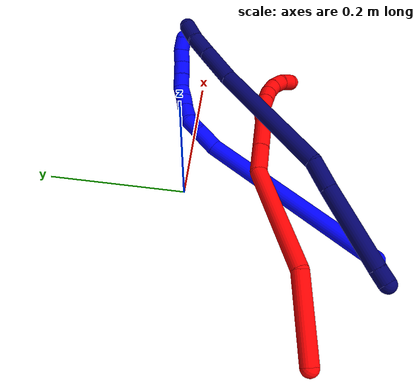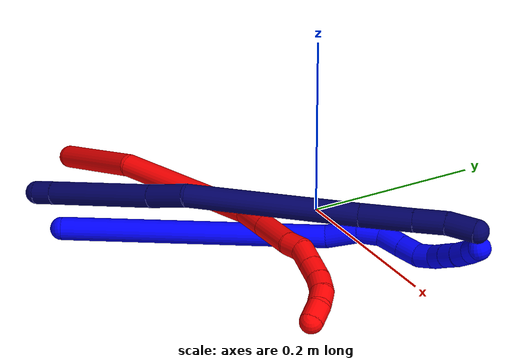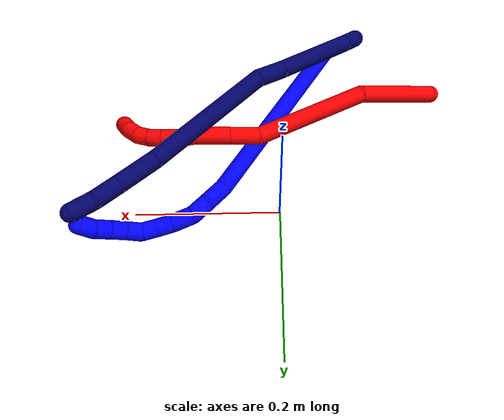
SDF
<sdf version="1.7">
 <world name="default">
  <model name="1">
   <static>0</static>
   <link name="1">
    <collision name="collision-cylinder-e_1_1_4">
     <pose>0.094757 0.101555 0.031999 -1.26556 0.727224 -0.5443</pose>
     <geometry><cylinder><radius>0.0125</radius><length>0.285071</length></cylinder></geometry>
     <surface>
      <friction><ode><mu>1.16</mu><mu2>1.16</mu2><slip1>0</slip1><slip2>0</slip2></ode></friction>
      <contact><ode><kp>1e+06</kp><kd>1</kd><max_vel>0</max_vel><min_depth>0.001</min_depth></ode></contact>
     </surface>
    </collision>
    <visual name="visual-cylinder-e_1_1_4">
     <pose>0.094757 0.101555 0.031999 -1.26556 0.727224 -0.5443</pose>
     <geometry><cylinder><radius>0.0125</radius><length>0.285071</length></cylinder></geometry>
     <material><ambient>0 0 1 1</ambient></material>
    </visual>
    <collision name="collision-cylinder-e_2_4_5">
     <pose>0.200148 0.217335 0.063665 -1.59417 0.641839 -0.655963</pose>
     <geometry><cylinder><radius>0.0125</radius><length>0.035526</length></cylinder></geometry>
     <surface>
      <friction><ode><mu>1.16</mu><mu2>1.16</mu2><slip1>0</slip1><slip2>0</slip2></ode></friction>
      <contact><ode><kp>1e+06</kp><kd>1</kd><max_vel>0</max_vel><min_depth>0.001</min_depth></ode></contact>
     </surface>
    </collision>
    <visual name="visual-cylinder-e_2_4_5">
     <pose>0.200148 0.217335 0.063665 -1.59417 0.641839 -0.655963</pose>
     <geometry><cylinder><radius>0.0125</radius><length>0.035526</length></cylinder></geometry>
     <material><ambient>0 0 1 1</ambient></material>
    </visual>
    <collision name="collision-cylinder-e_3_5_6">
     <pose>0.217127 0.24212 0.066509 -1.27857 0.522029 -0.392053</pose>
     <geometry><cylinder><radius>0.0125</radius><length>0.025446</length></cylinder></geometry>
     <surface>
      <friction><ode><mu>1.16</mu><mu2>1.16</mu2><slip1>0</slip1><slip2>0</slip2></ode></friction>
      <contact><ode><kp>1e+06</kp><kd>1</kd><max_vel>0</max_vel><min_depth>0.001</min_depth></ode></contact>
     </surface>
    </collision>
    <visual name="visual-cylinder-e_3_5_6">
     <pose>0.217127 0.24212 0.066509 -1.27857 0.522029 -0.392053</pose>
     <geometry><cylinder><radius>0.0125</radius><length>0.025446</length></cylinder></geometry>
     <material><ambient>0 0 1 1</ambient></material>
    </visual>
    <collision name="collision-cylinder-e_4_6_7">
     <pose>0.224424 0.265693 0.075253 -1.1666 0.067213 -0.044363</pose>
     <geometry><cylinder><radius>0.0125</radius><length>0.02837</length></cylinder></geometry>
     <surface>
      <friction><ode><mu>1.16</mu><mu2>1.16</mu2><slip1>0</slip1><slip2>0</slip2></ode></friction>
      <contact><ode><kp>1e+06</kp><kd>1</kd><max_vel>0</max_vel><min_depth>0.001</min_depth></ode></contact>
     </surface>
    </collision>
    <visual name="visual-cylinder-e_4_6_7">
     <pose>0.224424 0.265693 0.075253 -1.1666 0.067213 -0.044363</pose>
     <geometry><cylinder><radius>0.0125</radius><length>0.02837</length></cylinder></geometry>
     <material><ambient>0 0 1 1</ambient></material>
    </visual>
    <collision name="collision-cylinder-e_5_7_8">
     <pose>0.225427 0.290047 0.084431 -1.26249 0.004249 -0.003106</pose>
     <geometry><cylinder><radius>0.0125</radius><length>0.023807</length></cylinder></geometry>
     <surface>
      <friction><ode><mu>1.16</mu><mu2>1.16</mu2><slip1>0</slip1><slip2>0</slip2></ode></friction>
      <contact><ode><kp>1e+06</kp><kd>1</kd><max_vel>0</max_vel><min_depth>0.001</min_depth></ode></contact>
     </surface>
    </collision>
    <visual name="visual-cylinder-e_5_7_8">
     <pose>0.225427 0.290047 0.084431 -1.26249 0.004249 -0.003106</pose>
     <geometry><cylinder><radius>0.0125</radius><length>0.023807</length></cylinder></geometry>
     <material><ambient>0 0 1 1</ambient></material>
    </visual>
    <collision name="collision-cylinder-e_6_8_9">
     <pose>0.226951 0.311512 0.087967 -1.57832 0.14455 -0.145638</pose>
     <geometry><cylinder><radius>0.0125</radius><length>0.020458</length></cylinder></geometry>
     <surface>
      <friction><ode><mu>1.16</mu><mu2>1.16</mu2><slip1>0</slip1><slip2>0</slip2></ode></friction>
      <contact><ode><kp>1e+06</kp><kd>1</kd><max_vel>0</max_vel><min_depth>0.001</min_depth></ode></contact>
     </surface>
    </collision>
    <visual name="visual-cylinder-e_6_8_9">
     <pose>0.226951 0.311512 0.087967 -1.57832 0.14455 -0.145638</pose>
     <geometry><cylinder><radius>0.0125</radius><length>0.020458</length></cylinder></geometry>
     <material><ambient>0 0 1 1</ambient></material>
    </visual>
    <collision name="collision-cylinder-e_7_9_10">
     <pose>0.227167 0.331533 0.0852 -1.83621 -0.121956 0.159392</pose>
     <geometry><cylinder><radius>0.0125</radius><length>0.02067</length></cylinder></geometry>
     <surface>
      <friction><ode><mu>1.16</mu><mu2>1.16</mu2><slip1>0</slip1><slip2>0</slip2></ode></friction>
      <contact><ode><kp>1e+06</kp><kd>1</kd><max_vel>0</max_vel><min_depth>0.001</min_depth></ode></contact>
     </surface>
    </collision>
    <visual name="visual-cylinder-e_7_9_10">
     <pose>0.227167 0.331533 0.0852 -1.83621 -0.121956 0.159392</pose>
     <geometry><cylinder><radius>0.0125</radius><length>0.02067</length></cylinder></geometry>
     <material><ambient>0 0 1 1</ambient></material>
    </visual>
    <collision name="collision-cylinder-e_8_10_11">
     <pose>0.224991 0.351176 0.080162 -1.80718 -0.091384 0.115961</pose>
     <geometry><cylinder><radius>0.0125</radius><length>0.02013</length></cylinder></geometry>
     <surface>
      <friction><ode><mu>1.16</mu><mu2>1.16</mu2><slip1>0</slip1><slip2>0</slip2></ode></friction>
      <contact><ode><kp>1e+06</kp><kd>1</kd><max_vel>0</max_vel><min_depth>0.001</min_depth></ode></contact>
     </surface>
    </collision>
    <visual name="visual-cylinder-e_8_10_11">
     <pose>0.224991 0.351176 0.080162 -1.80718 -0.091384 0.115961</pose>
     <geometry><cylinder><radius>0.0125</radius><length>0.02013</length></cylinder></geometry>
     <material><ambient>0 0 1 1</ambient></material>
    </visual>
    <collision name="collision-cylinder-e_9_11_12">
     <pose>0.223972 0.370537 0.074639 -1.8897 -0.009973 0.013795</pose>
     <geometry><cylinder><radius>0.0125</radius><length>0.020253</length></cylinder></geometry>
     <surface>
      <friction><ode><mu>1.16</mu><mu2>1.16</mu2><slip1>0</slip1><slip2>0</slip2></ode></friction>
      <contact><ode><kp>1e+06</kp><kd>1</kd><max_vel>0</max_vel><min_depth>0.001</min_depth></ode></contact>
     </surface>
    </collision>
    <visual name="visual-cylinder-e_9_11_12">
     <pose>0.223972 0.370537 0.074639 -1.8897 -0.009973 0.013795</pose>
     <geometry><cylinder><radius>0.0125</radius><length>0.020253</length></cylinder></geometry>
     <material><ambient>0 0 1 1</ambient></material>
    </visual>
    <collision name="collision-cylinder-e_10_12_2">
     <pose>0.22141 0.389041 0.067265 -2.01215 -0.245281 0.38431</pose>
     <geometry><cylinder><radius>0.0125</radius><length>0.020269</length></cylinder></geometry>
     <surface>
      <friction><ode><mu>1.16</mu><mu2>1.16</mu2><slip1>0</slip1><slip2>0</slip2></ode></friction>
      <contact><ode><kp>1e+06</kp><kd>1</kd><max_vel>0</max_vel><min_depth>0.001</min_depth></ode></contact>
     </surface>
    </collision>
    <visual name="visual-cylinder-e_10_12_2">
     <pose>0.22141 0.389041 0.067265 -2.01215 -0.245281 0.38431</pose>
     <geometry><cylinder><radius>0.0125</radius><length>0.020269</length></cylinder></geometry>
     <material><ambient>0 0 1 1</ambient></material>
    </visual>
    <collision name="collision-sphere-2">
     <pose>0.218949 0.39793 0.063066 0 -0 0</pose>
     <geometry><sphere><radius>0.0125</radius></sphere></geometry>
     <surface>
      <friction><ode><mu>1.16</mu><mu2>1.16</mu2><slip1>0</slip1><slip2>0</slip2></ode></friction>
      <contact><ode><kp>1e+06</kp><kd>1</kd><max_vel>0</max_vel><min_depth>0.001</min_depth></ode></contact>
     </surface>
    </collision>
    <visual name="visual-sphere-2">
     <pose>0.218949 0.39793 0.063066 0 -0 0</pose>
     <geometry><sphere><radius>0.0125</radius></sphere></geometry>
     <material><ambient>0 0 1 1</ambient></material>
    </visual>
    <collision name="collision-sphere-12">
     <pose>0.223871 0.380152 0.071465 0 -0 0</pose>
     <geometry><sphere><radius>0.0125</radius></sphere></geometry>
     <surface>
      <friction><ode><mu>1.16</mu><mu2>1.16</mu2><slip1>0</slip1><slip2>0</slip2></ode></friction>
      <contact><ode><kp>1e+06</kp><kd>1</kd><max_vel>0</max_vel><min_depth>0.001</min_depth></ode></contact>
     </surface>
    </collision>
    <visual name="visual-sphere-12">
     <pose>0.223871 0.380152 0.071465 0 -0 0</pose>
     <geometry><sphere><radius>0.0125</radius></sphere></geometry>
     <material><ambient>0 0 1 1</ambient></material>
    </visual>
    <collision name="collision-sphere-11">
     <pose>0.224073 0.360921 0.077814 0 -0 0</pose>
     <geometry><sphere><radius>0.0125</radius></sphere></geometry>
     <surface>
      <friction><ode><mu>1.16</mu><mu2>1.16</mu2><slip1>0</slip1><slip2>0</slip2></ode></friction>
      <contact><ode><kp>1e+06</kp><kd>1</kd><max_vel>0</max_vel><min_depth>0.001</min_depth></ode></contact>
     </surface>
    </collision>
    <visual name="visual-sphere-11">
     <pose>0.224073 0.360921 0.077814 0 -0 0</pose>
     <geometry><sphere><radius>0.0125</radius></sphere></geometry>
     <material><ambient>0 0 1 1</ambient></material>
    </visual>
    <collision name="collision-sphere-10">
     <pose>0.22591 0.341432 0.082509 0 -0 0</pose>
     <geometry><sphere><radius>0.0125</radius></sphere></geometry>
     <surface>
      <friction><ode><mu>1.16</mu><mu2>1.16</mu2><slip1>0</slip1><slip2>0</slip2></ode></friction>
      <contact><ode><kp>1e+06</kp><kd>1</kd><max_vel>0</max_vel><min_depth>0.001</min_depth></ode></contact>
     </surface>
    </collision>
    <visual name="visual-sphere-10">
     <pose>0.22591 0.341432 0.082509 0 -0 0</pose>
     <geometry><sphere><radius>0.0125</radius></sphere></geometry>
     <material><ambient>0 0 1 1</ambient></material>
    </visual>
    <collision name="collision-sphere-9">
     <pose>0.228424 0.321633 0.087891 0 -0 0</pose>
     <geometry><sphere><radius>0.0125</radius></sphere></geometry>
     <surface>
      <friction><ode><mu>1.16</mu><mu2>1.16</mu2><slip1>0</slip1><slip2>0</slip2></ode></friction>
      <contact><ode><kp>1e+06</kp><kd>1</kd><max_vel>0</max_vel><min_depth>0.001</min_depth></ode></contact>
     </surface>
    </collision>
    <visual name="visual-sphere-9">
     <pose>0.228424 0.321633 0.087891 0 -0 0</pose>
     <geometry><sphere><radius>0.0125</radius></sphere></geometry>
     <material><ambient>0 0 1 1</ambient></material>
    </visual>
    <collision name="collision-sphere-4">
     <pose>0.189514 0.20311 0.063997 0 -0 0</pose>
     <geometry><sphere><radius>0.0125</radius></sphere></geometry>
     <surface>
      <friction><ode><mu>1.16</mu><mu2>1.16</mu2><slip1>0</slip1><slip2>0</slip2></ode></friction>
      <contact><ode><kp>1e+06</kp><kd>1</kd><max_vel>0</max_vel><min_depth>0.001</min_depth></ode></contact>
     </surface>
    </collision>
    <visual name="visual-sphere-4">
     <pose>0.189514 0.20311 0.063997 0 -0 0</pose>
     <geometry><sphere><radius>0.0125</radius></sphere></geometry>
     <material><ambient>0 0 1 1</ambient></material>
    </visual>
    <collision name="collision-sphere-1">
     <geometry><sphere><radius>0.0125</radius></sphere></geometry>
     <surface>
      <friction><ode><mu>1.16</mu><mu2>1.16</mu2><slip1>0</slip1><slip2>0</slip2></ode></friction>
      <contact><ode><kp>1e+06</kp><kd>1</kd><max_vel>0</max_vel><min_depth>0.001</min_depth></ode></contact>
     </surface>
    </collision>
    <visual name="visual-sphere-1">
     <geometry><sphere><radius>0.0125</radius></sphere></geometry>
     <material><ambient>0 0 1 1</ambient></material>
    </visual>
    <collision name="collision-sphere-8">
     <pose>0.225477 0.30139 0.088043 0 -0 0</pose>
     <geometry><sphere><radius>0.0125</radius></sphere></geometry>
     <surface>
      <friction><ode><mu>1.16</mu><mu2>1.16</mu2><slip1>0</slip1><slip2>0</slip2></ode></friction>
      <contact><ode><kp>1e+06</kp><kd>1</kd><max_vel>0</max_vel><min_depth>0.001</min_depth></ode></contact>
     </surface>
    </collision>
    <visual name="visual-sphere-8">
     <pose>0.225477 0.30139 0.088043 0 -0 0</pose>
     <geometry><sphere><radius>0.0125</radius></sphere></geometry>
     <material><ambient>0 0 1 1</ambient></material>
    </visual>
    <collision name="collision-sphere-5">
     <pose>0.210783 0.231559 0.063332 0 -0 0</pose>
     <geometry><sphere><radius>0.0125</radius></sphere></geometry>
     <surface>
      <friction><ode><mu>1.16</mu><mu2>1.16</mu2><slip1>0</slip1><slip2>0</slip2></ode></friction>
      <contact><ode><kp>1e+06</kp><kd>1</kd><max_vel>0</max_vel><min_depth>0.001</min_depth></ode></contact>
     </surface>
    </collision>
    <visual name="visual-sphere-5">
     <pose>0.210783 0.231559 0.063332 0 -0 0</pose>
     <geometry><sphere><radius>0.0125</radius></sphere></geometry>
     <material><ambient>0 0 1 1</ambient></material>
    </visual>
    <collision name="collision-sphere-6">
     <pose>0.223471 0.25268 0.069687 0 -0 0</pose>
     <geometry><sphere><radius>0.0125</radius></sphere></geometry>
     <surface>
      <friction><ode><mu>1.16</mu><mu2>1.16</mu2><slip1>0</slip1><slip2>0</slip2></ode></friction>
      <contact><ode><kp>1e+06</kp><kd>1</kd><max_vel>0</max_vel><min_depth>0.001</min_depth></ode></contact>
     </surface>
    </collision>
    <visual name="visual-sphere-6">
     <pose>0.223471 0.25268 0.069687 0 -0 0</pose>
     <geometry><sphere><radius>0.0125</radius></sphere></geometry>
     <material><ambient>0 0 1 1</ambient></material>
    </visual>
    <collision name="collision-sphere-7">
     <pose>0.225376 0.278705 0.080819 0 -0 0</pose>
     <geometry><sphere><radius>0.0125</radius></sphere></geometry>
     <surface>
      <friction><ode><mu>1.16</mu><mu2>1.16</mu2><slip1>0</slip1><slip2>0</slip2></ode></friction>
      <contact><ode><kp>1e+06</kp><kd>1</kd><max_vel>0</max_vel><min_depth>0.001</min_depth></ode></contact>
     </surface>
    </collision>
    <visual name="visual-sphere-7">
     <pose>0.225376 0.278705 0.080819 0 -0 0</pose>
     <geometry><sphere><radius>0.0125</radius></sphere></geometry>
     <material><ambient>0 0 1 1</ambient></material>
    </visual>
    <inertial>
     <pose>0.148546 0.185921 0.050541 0 -0 0</pose>
     <mass>0.5</mass>
     <inertia>
      <ixx>0.000522</ixx>
      <ixy>0</ixy>
      <ixz>0</ixz>
      <iyy>0.000417</iyy>
      <iyz>0</iyz>
      <izz>-0.002691</izz>
     </inertia>
    </inertial>
   </link>
   <pose>-0.078273 -0.272883 0.011501 2.9055 -0.077396 1.82902</pose>
  </model>
  <model name="2">
   <static>0</static>
   <link name="2">
    <collision name="collision-cylinder-e_1_1_4">
     <pose>0.045639 0.012044 0.035538 -0.326761 0.882673 -0.155441</pose>
     <geometry><cylinder><radius>0.0125</radius><length>0.118168</length></cylinder></geometry>
     <surface>
      <friction><ode><mu>1.16</mu><mu2>1.16</mu2><slip1>0</slip1><slip2>0</slip2></ode></friction>
      <contact><ode><kp>1e+06</kp><kd>1</kd><max_vel>0</max_vel><min_depth>0.001</min_depth></ode></contact>
     </surface>
    </collision>
    <visual name="visual-cylinder-e_1_1_4">
     <pose>0.045639 0.012044 0.035538 -0.326761 0.882673 -0.155441</pose>
     <geometry><cylinder><radius>0.0125</radius><length>0.118168</length></cylinder></geometry>
     <material><ambient>1 0 0 1</ambient></material>
    </visual>
    <collision name="collision-cylinder-e_2_4_5">
     <pose>0.166402 0.046902 0.091939 -0.83001 1.1804 -0.573969</pose>
     <geometry><cylinder><radius>0.0125</radius><length>0.162474</length></cylinder></geometry>
     <surface>
      <friction><ode><mu>1.16</mu><mu2>1.16</mu2><slip1>0</slip1><slip2>0</slip2></ode></friction>
      <contact><ode><kp>1e+06</kp><kd>1</kd><max_vel>0</max_vel><min_depth>0.001</min_depth></ode></contact>
     </surface>
    </collision>
    <visual name="visual-cylinder-e_2_4_5">
     <pose>0.166402 0.046902 0.091939 -0.83001 1.1804 -0.573969</pose>
     <geometry><cylinder><radius>0.0125</radius><length>0.162474</length></cylinder></geometry>
     <material><ambient>1 0 0 1</ambient></material>
    </visual>
    <collision name="collision-cylinder-e_3_5_6">
     <pose>0.259366 0.068783 0.123188 0.089501 1.04187 0.051379</pose>
     <geometry><cylinder><radius>0.0125</radius><length>0.041325</length></cylinder></geometry>
     <surface>
      <friction><ode><mu>1.16</mu><mu2>1.16</mu2><slip1>0</slip1><slip2>0</slip2></ode></friction>
      <contact><ode><kp>1e+06</kp><kd>1</kd><max_vel>0</max_vel><min_depth>0.001</min_depth></ode></contact>
     </surface>
    </collision>
    <visual name="visual-cylinder-e_3_5_6">
     <pose>0.259366 0.068783 0.123188 0.089501 1.04187 0.051379</pose>
     <geometry><cylinder><radius>0.0125</radius><length>0.041325</length></cylinder></geometry>
     <material><ambient>1 0 0 1</ambient></material>
    </visual>
    <collision name="collision-cylinder-e_4_6_7">
     <pose>0.298591 0.066723 0.145993 0.090544 1.04284 0.052036</pose>
     <geometry><cylinder><radius>0.0125</radius><length>0.049515</length></cylinder></geometry>
     <surface>
      <friction><ode><mu>1.16</mu><mu2>1.16</mu2><slip1>0</slip1><slip2>0</slip2></ode></friction>
      <contact><ode><kp>1e+06</kp><kd>1</kd><max_vel>0</max_vel><min_depth>0.001</min_depth></ode></contact>
     </surface>
    </collision>
    <visual name="visual-cylinder-e_4_6_7">
     <pose>0.298591 0.066723 0.145993 0.090544 1.04284 0.052036</pose>
     <geometry><cylinder><radius>0.0125</radius><length>0.049515</length></cylinder></geometry>
     <material><ambient>1 0 0 1</ambient></material>
    </visual>
    <collision name="collision-cylinder-e_5_7_8">
     <pose>0.329169 0.067107 0.162792 -0.332367 1.1041 -0.205888</pose>
     <geometry><cylinder><radius>0.0125</radius><length>0.020585</length></cylinder></geometry>
     <surface>
      <friction><ode><mu>1.16</mu><mu2>1.16</mu2><slip1>0</slip1><slip2>0</slip2></ode></friction>
      <contact><ode><kp>1e+06</kp><kd>1</kd><max_vel>0</max_vel><min_depth>0.001</min_depth></ode></contact>
     </surface>
    </collision>
    <visual name="visual-cylinder-e_5_7_8">
     <pose>0.329169 0.067107 0.162792 -0.332367 1.1041 -0.205888</pose>
     <geometry><cylinder><radius>0.0125</radius><length>0.020585</length></cylinder></geometry>
     <material><ambient>1 0 0 1</ambient></material>
    </visual>
    <collision name="collision-cylinder-e_6_8_9">
     <pose>0.35004 0.064746 0.17139 0.742254 1.11488 0.476001</pose>
     <geometry><cylinder><radius>0.0125</radius><length>0.026016</length></cylinder></geometry>
     <surface>
      <friction><ode><mu>1.16</mu><mu2>1.16</mu2><slip1>0</slip1><slip2>0</slip2></ode></friction>
      <contact><ode><kp>1e+06</kp><kd>1</kd><max_vel>0</max_vel><min_depth>0.001</min_depth></ode></contact>
     </surface>
    </collision>
    <visual name="visual-cylinder-e_6_8_9">
     <pose>0.35004 0.064746 0.17139 0.742254 1.11488 0.476001</pose>
     <geometry><cylinder><radius>0.0125</radius><length>0.026016</length></cylinder></geometry>
     <material><ambient>1 0 0 1</ambient></material>
    </visual>
    <collision name="collision-cylinder-e_7_9_10">
     <pose>0.371309 0.057676 0.179066 0.746841 1.11437 0.47885</pose>
     <geometry><cylinder><radius>0.0125</radius><length>0.021366</length></cylinder></geometry>
     <surface>
      <friction><ode><mu>1.16</mu><mu2>1.16</mu2><slip1>0</slip1><slip2>0</slip2></ode></friction>
      <contact><ode><kp>1e+06</kp><kd>1</kd><max_vel>0</max_vel><min_depth>0.001</min_depth></ode></contact>
     </surface>
    </collision>
    <visual name="visual-cylinder-e_7_9_10">
     <pose>0.371309 0.057676 0.179066 0.746841 1.11437 0.47885</pose>
     <geometry><cylinder><radius>0.0125</radius><length>0.021366</length></cylinder></geometry>
     <material><ambient>1 0 0 1</ambient></material>
    </visual>
    <collision name="collision-cylinder-e_8_10_11">
     <pose>0.389068 0.049834 0.186375 0.878009 0.934574 0.465266</pose>
     <geometry><cylinder><radius>0.0125</radius><length>0.020314</length></cylinder></geometry>
     <surface>
      <friction><ode><mu>1.16</mu><mu2>1.16</mu2><slip1>0</slip1><slip2>0</slip2></ode></friction>
      <contact><ode><kp>1e+06</kp><kd>1</kd><max_vel>0</max_vel><min_depth>0.001</min_depth></ode></contact>
     </surface>
    </collision>
    <visual name="visual-cylinder-e_8_10_11">
     <pose>0.389068 0.049834 0.186375 0.878009 0.934574 0.465266</pose>
     <geometry><cylinder><radius>0.0125</radius><length>0.020314</length></cylinder></geometry>
     <material><ambient>1 0 0 1</ambient></material>
    </visual>
    <collision name="collision-cylinder-e_9_11_12">
     <pose>0.40321 0.037993 0.193858 1.10389 0.637624 0.401044</pose>
     <geometry><cylinder><radius>0.0125</radius><length>0.020063</length></cylinder></geometry>
     <surface>
      <friction><ode><mu>1.16</mu><mu2>1.16</mu2><slip1>0</slip1><slip2>0</slip2></ode></friction>
      <contact><ode><kp>1e+06</kp><kd>1</kd><max_vel>0</max_vel><min_depth>0.001</min_depth></ode></contact>
     </surface>
    </collision>
    <visual name="visual-cylinder-e_9_11_12">
     <pose>0.40321 0.037993 0.193858 1.10389 0.637624 0.401044</pose>
     <geometry><cylinder><radius>0.0125</radius><length>0.020063</length></cylinder></geometry>
     <material><ambient>1 0 0 1</ambient></material>
    </visual>
    <collision name="collision-cylinder-e_10_12_2">
     <pose>0.413736 0.021863 0.198594 1.44745 0.468472 0.415632</pose>
     <geometry><cylinder><radius>0.0125</radius><length>0.020174</length></cylinder></geometry>
     <surface>
      <friction><ode><mu>1.16</mu><mu2>1.16</mu2><slip1>0</slip1><slip2>0</slip2></ode></friction>
      <contact><ode><kp>1e+06</kp><kd>1</kd><max_vel>0</max_vel><min_depth>0.001</min_depth></ode></contact>
     </surface>
    </collision>
    <visual name="visual-cylinder-e_10_12_2">
     <pose>0.413736 0.021863 0.198594 1.44745 0.468472 0.415632</pose>
     <geometry><cylinder><radius>0.0125</radius><length>0.020174</length></cylinder></geometry>
     <material><ambient>1 0 0 1</ambient></material>
    </visual>
    <collision name="collision-sphere-2">
     <pose>0.418291 0.012931 0.199701 0 -0 0</pose>
     <geometry><sphere><radius>0.0125</radius></sphere></geometry>
     <surface>
      <friction><ode><mu>1.16</mu><mu2>1.16</mu2><slip1>0</slip1><slip2>0</slip2></ode></friction>
      <contact><ode><kp>1e+06</kp><kd>1</kd><max_vel>0</max_vel><min_depth>0.001</min_depth></ode></contact>
     </surface>
    </collision>
    <visual name="visual-sphere-2">
     <pose>0.418291 0.012931 0.199701 0 -0 0</pose>
     <geometry><sphere><radius>0.0125</radius></sphere></geometry>
     <material><ambient>1 0 0 1</ambient></material>
    </visual>
    <collision name="collision-sphere-12">
     <pose>0.409182 0.030795 0.197486 0 -0 0</pose>
     <geometry><sphere><radius>0.0125</radius></sphere></geometry>
     <surface>
      <friction><ode><mu>1.16</mu><mu2>1.16</mu2><slip1>0</slip1><slip2>0</slip2></ode></friction>
      <contact><ode><kp>1e+06</kp><kd>1</kd><max_vel>0</max_vel><min_depth>0.001</min_depth></ode></contact>
     </surface>
    </collision>
    <visual name="visual-sphere-12">
     <pose>0.409182 0.030795 0.197486 0 -0 0</pose>
     <geometry><sphere><radius>0.0125</radius></sphere></geometry>
     <material><ambient>1 0 0 1</ambient></material>
    </visual>
    <collision name="collision-sphere-11">
     <pose>0.397238 0.04519 0.19023 0 -0 0</pose>
     <geometry><sphere><radius>0.0125</radius></sphere></geometry>
     <surface>
      <friction><ode><mu>1.16</mu><mu2>1.16</mu2><slip1>0</slip1><slip2>0</slip2></ode></friction>
      <contact><ode><kp>1e+06</kp><kd>1</kd><max_vel>0</max_vel><min_depth>0.001</min_depth></ode></contact>
     </surface>
    </collision>
    <visual name="visual-sphere-11">
     <pose>0.397238 0.04519 0.19023 0 -0 0</pose>
     <geometry><sphere><radius>0.0125</radius></sphere></geometry>
     <material><ambient>1 0 0 1</ambient></material>
    </visual>
    <collision name="collision-sphere-10">
     <pose>0.380899 0.054478 0.182521 0 -0 0</pose>
     <geometry><sphere><radius>0.0125</radius></sphere></geometry>
     <surface>
      <friction><ode><mu>1.16</mu><mu2>1.16</mu2><slip1>0</slip1><slip2>0</slip2></ode></friction>
      <contact><ode><kp>1e+06</kp><kd>1</kd><max_vel>0</max_vel><min_depth>0.001</min_depth></ode></contact>
     </surface>
    </collision>
    <visual name="visual-sphere-10">
     <pose>0.380899 0.054478 0.182521 0 -0 0</pose>
     <geometry><sphere><radius>0.0125</radius></sphere></geometry>
     <material><ambient>1 0 0 1</ambient></material>
    </visual>
    <collision name="collision-sphere-9">
     <pose>0.361719 0.060875 0.17561 0 -0 0</pose>
     <geometry><sphere><radius>0.0125</radius></sphere></geometry>
     <surface>
      <friction><ode><mu>1.16</mu><mu2>1.16</mu2><slip1>0</slip1><slip2>0</slip2></ode></friction>
      <contact><ode><kp>1e+06</kp><kd>1</kd><max_vel>0</max_vel><min_depth>0.001</min_depth></ode></contact>
     </surface>
    </collision>
    <visual name="visual-sphere-9">
     <pose>0.361719 0.060875 0.17561 0 -0 0</pose>
     <geometry><sphere><radius>0.0125</radius></sphere></geometry>
     <material><ambient>1 0 0 1</ambient></material>
    </visual>
    <collision name="collision-sphere-4">
     <pose>0.091277 0.024088 0.071076 0 -0 0</pose>
     <geometry><sphere><radius>0.0125</radius></sphere></geometry>
     <surface>
      <friction><ode><mu>1.16</mu><mu2>1.16</mu2><slip1>0</slip1><slip2>0</slip2></ode></friction>
      <contact><ode><kp>1e+06</kp><kd>1</kd><max_vel>0</max_vel><min_depth>0.001</min_depth></ode></contact>
     </surface>
    </collision>
    <visual name="visual-sphere-4">
     <pose>0.091277 0.024088 0.071076 0 -0 0</pose>
     <geometry><sphere><radius>0.0125</radius></sphere></geometry>
     <material><ambient>1 0 0 1</ambient></material>
    </visual>
    <collision name="collision-sphere-1">
     <geometry><sphere><radius>0.0125</radius></sphere></geometry>
     <surface>
      <friction><ode><mu>1.16</mu><mu2>1.16</mu2><slip1>0</slip1><slip2>0</slip2></ode></friction>
      <contact><ode><kp>1e+06</kp><kd>1</kd><max_vel>0</max_vel><min_depth>0.001</min_depth></ode></contact>
     </surface>
    </collision>
    <visual name="visual-sphere-1">
     <geometry><sphere><radius>0.0125</radius></sphere></geometry>
     <material><ambient>1 0 0 1</ambient></material>
    </visual>
    <collision name="collision-sphere-8">
     <pose>0.338361 0.068618 0.167169 0 -0 0</pose>
     <geometry><sphere><radius>0.0125</radius></sphere></geometry>
     <surface>
      <friction><ode><mu>1.16</mu><mu2>1.16</mu2><slip1>0</slip1><slip2>0</slip2></ode></friction>
      <contact><ode><kp>1e+06</kp><kd>1</kd><max_vel>0</max_vel><min_depth>0.001</min_depth></ode></contact>
     </surface>
    </collision>
    <visual name="visual-sphere-8">
     <pose>0.338361 0.068618 0.167169 0 -0 0</pose>
     <geometry><sphere><radius>0.0125</radius></sphere></geometry>
     <material><ambient>1 0 0 1</ambient></material>
    </visual>
    <collision name="collision-sphere-5">
     <pose>0.241527 0.069715 0.112803 0 -0 0</pose>
     <geometry><sphere><radius>0.0125</radius></sphere></geometry>
     <surface>
      <friction><ode><mu>1.16</mu><mu2>1.16</mu2><slip1>0</slip1><slip2>0</slip2></ode></friction>
      <contact><ode><kp>1e+06</kp><kd>1</kd><max_vel>0</max_vel><min_depth>0.001</min_depth></ode></contact>
     </surface>
    </collision>
    <visual name="visual-sphere-5">
     <pose>0.241527 0.069715 0.112803 0 -0 0</pose>
     <geometry><sphere><radius>0.0125</radius></sphere></geometry>
     <material><ambient>1 0 0 1</ambient></material>
    </visual>
    <collision name="collision-sphere-6">
     <pose>0.277205 0.067851 0.133572 0 -0 0</pose>
     <geometry><sphere><radius>0.0125</radius></sphere></geometry>
     <surface>
      <friction><ode><mu>1.16</mu><mu2>1.16</mu2><slip1>0</slip1><slip2>0</slip2></ode></friction>
      <contact><ode><kp>1e+06</kp><kd>1</kd><max_vel>0</max_vel><min_depth>0.001</min_depth></ode></contact>
     </surface>
    </collision>
    <visual name="visual-sphere-6">
     <pose>0.277205 0.067851 0.133572 0 -0 0</pose>
     <geometry><sphere><radius>0.0125</radius></sphere></geometry>
     <material><ambient>1 0 0 1</ambient></material>
    </visual>
    <collision name="collision-sphere-7">
     <pose>0.319978 0.065596 0.158414 0 -0 0</pose>
     <geometry><sphere><radius>0.0125</radius></sphere></geometry>
     <surface>
      <friction><ode><mu>1.16</mu><mu2>1.16</mu2><slip1>0</slip1><slip2>0</slip2></ode></friction>
      <contact><ode><kp>1e+06</kp><kd>1</kd><max_vel>0</max_vel><min_depth>0.001</min_depth></ode></contact>
     </surface>
    </collision>
    <visual name="visual-sphere-7">
     <pose>0.319978 0.065596 0.158414 0 -0 0</pose>
     <geometry><sphere><radius>0.0125</radius></sphere></geometry>
     <material><ambient>1 0 0 1</ambient></material>
    </visual>
    <inertial>
     <pose>0.212176 0.043407 0.109549 0 -0 0</pose>
     <mass>0.5</mass>
     <inertia>
      <ixx>0.000167</ixx>
      <ixy>0</ixy>
      <ixz>0</ixz>
      <iyy>0.000421</iyy>
      <iyz>0</iyz>
      <izz>-0.000581</izz>
     </inertia>
    </inertial>
   </link>
   <pose>-0.234428 -0.189665 0.011562 0.457412 0.414147 0.269794</pose>
  </model>
  <model name="7">
   <static>0</static>
   <link name="7">
    <collision name="collision-cylinder-e_1_1_4">
     <pose>0.007314 0.008258 0.001094 -1.43913 0.720529 -0.637686</pose>
     <geometry><cylinder><radius>0.0125</radius><length>0.022171</length></cylinder></geometry>
     <surface>
      <friction><ode><mu>1.16</mu><mu2>1.16</mu2><slip1>0</slip1><slip2>0</slip2></ode></friction>
      <contact><ode><kp>1e+06</kp><kd>1</kd><max_vel>0</max_vel><min_depth>0.001</min_depth></ode></contact>
     </surface>
    </collision>
    <visual name="visual-cylinder-e_1_1_4">
     <pose>0.007314 0.008258 0.001094 -1.43913 0.720529 -0.637686</pose>
     <geometry><cylinder><radius>0.0125</radius><length>0.022171</length></cylinder></geometry>
     <material><ambient>0.003922 0 0.403922 1</ambient></material>
    </visual>
    <collision name="collision-cylinder-e_2_4_5">
     <pose>0.055996 0.061012 0.008867 -1.42179 0.74343 -0.647726</pose>
     <geometry><cylinder><radius>0.0125</radius><length>0.122242</length></cylinder></geometry>
     <surface>
      <friction><ode><mu>1.16</mu><mu2>1.16</mu2><slip1>0</slip1><slip2>0</slip2></ode></friction>
      <contact><ode><kp>1e+06</kp><kd>1</kd><max_vel>0</max_vel><min_depth>0.001</min_depth></ode></contact>
     </surface>
    </collision>
    <visual name="visual-cylinder-e_2_4_5">
     <pose>0.055996 0.061012 0.008867 -1.42179 0.74343 -0.647726</pose>
     <geometry><cylinder><radius>0.0125</radius><length>0.122242</length></cylinder></geometry>
     <material><ambient>0.003922 0 0.403922 1</ambient></material>
    </visual>
    <collision name="collision-cylinder-e_3_5_6">
     <pose>0.112091 0.121122 0.019025 -1.3516 0.744122 -0.606441</pose>
     <geometry><cylinder><radius>0.0125</radius><length>0.043489</length></cylinder></geometry>
     <surface>
      <friction><ode><mu>1.16</mu><mu2>1.16</mu2><slip1>0</slip1><slip2>0</slip2></ode></friction>
      <contact><ode><kp>1e+06</kp><kd>1</kd><max_vel>0</max_vel><min_depth>0.001</min_depth></ode></contact>
     </surface>
    </collision>
    <visual name="visual-cylinder-e_3_5_6">
     <pose>0.112091 0.121122 0.019025 -1.3516 0.744122 -0.606441</pose>
     <geometry><cylinder><radius>0.0125</radius><length>0.043489</length></cylinder></geometry>
     <material><ambient>0.003922 0 0.403922 1</ambient></material>
    </visual>
    <collision name="collision-cylinder-e_4_6_7">
     <pose>0.179038 0.214021 0.015369 -1.66285 0.592239 -0.645691</pose>
     <geometry><cylinder><radius>0.0125</radius><length>0.18709</length></cylinder></geometry>
     <surface>
      <friction><ode><mu>1.16</mu><mu2>1.16</mu2><slip1>0</slip1><slip2>0</slip2></ode></friction>
      <contact><ode><kp>1e+06</kp><kd>1</kd><max_vel>0</max_vel><min_depth>0.001</min_depth></ode></contact>
     </surface>
    </collision>
    <visual name="visual-cylinder-e_4_6_7">
     <pose>0.179038 0.214021 0.015369 -1.66285 0.592239 -0.645691</pose>
     <geometry><cylinder><radius>0.0125</radius><length>0.18709</length></cylinder></geometry>
     <material><ambient>0.003922 0 0.403922 1</ambient></material>
    </visual>
    <collision name="collision-cylinder-e_5_7_8">
     <pose>0.248611 0.314282 0.007513 -1.60219 0.646657 -0.665813</pose>
     <geometry><cylinder><radius>0.0125</radius><length>0.057606</length></cylinder></geometry>
     <surface>
      <friction><ode><mu>1.16</mu><mu2>1.16</mu2><slip1>0</slip1><slip2>0</slip2></ode></friction>
      <contact><ode><kp>1e+06</kp><kd>1</kd><max_vel>0</max_vel><min_depth>0.001</min_depth></ode></contact>
     </surface>
    </collision>
    <visual name="visual-cylinder-e_5_7_8">
     <pose>0.248611 0.314282 0.007513 -1.60219 0.646657 -0.665813</pose>
     <geometry><cylinder><radius>0.0125</radius><length>0.057606</length></cylinder></geometry>
     <material><ambient>0.003922 0 0.403922 1</ambient></material>
    </visual>
    <collision name="collision-cylinder-e_6_8_9">
     <pose>0.276442 0.351081 0.006588 -1.58553 0.648496 -0.65745</pose>
     <geometry><cylinder><radius>0.0125</radius><length>0.03469</length></cylinder></geometry>
     <surface>
      <friction><ode><mu>1.16</mu><mu2>1.16</mu2><slip1>0</slip1><slip2>0</slip2></ode></friction>
      <contact><ode><kp>1e+06</kp><kd>1</kd><max_vel>0</max_vel><min_depth>0.001</min_depth></ode></contact>
     </surface>
    </collision>
    <visual name="visual-cylinder-e_6_8_9">
     <pose>0.276442 0.351081 0.006588 -1.58553 0.648496 -0.65745</pose>
     <geometry><cylinder><radius>0.0125</radius><length>0.03469</length></cylinder></geometry>
     <material><ambient>0.003922 0 0.403922 1</ambient></material>
    </visual>
    <collision name="collision-cylinder-e_7_9_2">
     <pose>0.299036 0.375788 0.004903 -1.70602 0.834391 -0.93941</pose>
     <geometry><cylinder><radius>0.0125</radius><length>0.032713</length></cylinder></geometry>
     <surface>
      <friction><ode><mu>1.16</mu><mu2>1.16</mu2><slip1>0</slip1><slip2>0</slip2></ode></friction>
      <contact><ode><kp>1e+06</kp><kd>1</kd><max_vel>0</max_vel><min_depth>0.001</min_depth></ode></contact>
     </surface>
    </collision>
    <visual name="visual-cylinder-e_7_9_2">
     <pose>0.299036 0.375788 0.004903 -1.70602 0.834391 -0.93941</pose>
     <geometry><cylinder><radius>0.0125</radius><length>0.032713</length></cylinder></geometry>
     <material><ambient>0.003922 0 0.403922 1</ambient></material>
    </visual>
    <collision name="collision-sphere-2">
     <pose>0.311154 0.386674 0.003423 0 -0 0</pose>
     <geometry><sphere><radius>0.0125</radius></sphere></geometry>
     <surface>
      <friction><ode><mu>1.16</mu><mu2>1.16</mu2><slip1>0</slip1><slip2>0</slip2></ode></friction>
      <contact><ode><kp>1e+06</kp><kd>1</kd><max_vel>0</max_vel><min_depth>0.001</min_depth></ode></contact>
     </surface>
    </collision>
    <visual name="visual-sphere-2">
     <pose>0.311154 0.386674 0.003423 0 -0 0</pose>
     <geometry><sphere><radius>0.0125</radius></sphere></geometry>
     <material><ambient>0.003922 0 0.403922 1</ambient></material>
    </visual>
    <collision name="collision-sphere-9">
     <pose>0.286918 0.364903 0.006384 0 -0 0</pose>
     <geometry><sphere><radius>0.0125</radius></sphere></geometry>
     <surface>
      <friction><ode><mu>1.16</mu><mu2>1.16</mu2><slip1>0</slip1><slip2>0</slip2></ode></friction>
      <contact><ode><kp>1e+06</kp><kd>1</kd><max_vel>0</max_vel><min_depth>0.001</min_depth></ode></contact>
     </surface>
    </collision>
    <visual name="visual-sphere-9">
     <pose>0.286918 0.364903 0.006384 0 -0 0</pose>
     <geometry><sphere><radius>0.0125</radius></sphere></geometry>
     <material><ambient>0.003922 0 0.403922 1</ambient></material>
    </visual>
    <collision name="collision-sphere-4">
     <pose>0.014628 0.016516 0.002187 0 -0 0</pose>
     <geometry><sphere><radius>0.0125</radius></sphere></geometry>
     <surface>
      <friction><ode><mu>1.16</mu><mu2>1.16</mu2><slip1>0</slip1><slip2>0</slip2></ode></friction>
      <contact><ode><kp>1e+06</kp><kd>1</kd><max_vel>0</max_vel><min_depth>0.001</min_depth></ode></contact>
     </surface>
    </collision>
    <visual name="visual-sphere-4">
     <pose>0.014628 0.016516 0.002187 0 -0 0</pose>
     <geometry><sphere><radius>0.0125</radius></sphere></geometry>
     <material><ambient>0.003922 0 0.403922 1</ambient></material>
    </visual>
    <collision name="collision-sphere-1">
     <geometry><sphere><radius>0.0125</radius></sphere></geometry>
     <surface>
      <friction><ode><mu>1.16</mu><mu2>1.16</mu2><slip1>0</slip1><slip2>0</slip2></ode></friction>
      <contact><ode><kp>1e+06</kp><kd>1</kd><max_vel>0</max_vel><min_depth>0.001</min_depth></ode></contact>
     </surface>
    </collision>
    <visual name="visual-sphere-1">
     <geometry><sphere><radius>0.0125</radius></sphere></geometry>
     <material><ambient>0.003922 0 0.403922 1</ambient></material>
    </visual>
    <collision name="collision-sphere-8">
     <pose>0.265966 0.337259 0.006792 0 -0 0</pose>
     <geometry><sphere><radius>0.0125</radius></sphere></geometry>
     <surface>
      <friction><ode><mu>1.16</mu><mu2>1.16</mu2><slip1>0</slip1><slip2>0</slip2></ode></friction>
      <contact><ode><kp>1e+06</kp><kd>1</kd><max_vel>0</max_vel><min_depth>0.001</min_depth></ode></contact>
     </surface>
    </collision>
    <visual name="visual-sphere-8">
     <pose>0.265966 0.337259 0.006792 0 -0 0</pose>
     <geometry><sphere><radius>0.0125</radius></sphere></geometry>
     <material><ambient>0.003922 0 0.403922 1</ambient></material>
    </visual>
    <collision name="collision-sphere-5">
     <pose>0.097363 0.105507 0.015547 0 -0 0</pose>
     <geometry><sphere><radius>0.0125</radius></sphere></geometry>
     <surface>
      <friction><ode><mu>1.16</mu><mu2>1.16</mu2><slip1>0</slip1><slip2>0</slip2></ode></friction>
      <contact><ode><kp>1e+06</kp><kd>1</kd><max_vel>0</max_vel><min_depth>0.001</min_depth></ode></contact>
     </surface>
    </collision>
    <visual name="visual-sphere-5">
     <pose>0.097363 0.105507 0.015547 0 -0 0</pose>
     <geometry><sphere><radius>0.0125</radius></sphere></geometry>
     <material><ambient>0.003922 0 0.403922 1</ambient></material>
    </visual>
    <collision name="collision-sphere-6">
     <pose>0.126819 0.136736 0.022504 0 -0 0</pose>
     <geometry><sphere><radius>0.0125</radius></sphere></geometry>
     <surface>
      <friction><ode><mu>1.16</mu><mu2>1.16</mu2><slip1>0</slip1><slip2>0</slip2></ode></friction>
      <contact><ode><kp>1e+06</kp><kd>1</kd><max_vel>0</max_vel><min_depth>0.001</min_depth></ode></contact>
     </surface>
    </collision>
    <visual name="visual-sphere-6">
     <pose>0.126819 0.136736 0.022504 0 -0 0</pose>
     <geometry><sphere><radius>0.0125</radius></sphere></geometry>
     <material><ambient>0.003922 0 0.403922 1</ambient></material>
    </visual>
    <collision name="collision-sphere-7">
     <pose>0.231257 0.291306 0.008235 0 -0 0</pose>
     <geometry><sphere><radius>0.0125</radius></sphere></geometry>
     <surface>
      <friction><ode><mu>1.16</mu><mu2>1.16</mu2><slip1>0</slip1><slip2>0</slip2></ode></friction>
      <contact><ode><kp>1e+06</kp><kd>1</kd><max_vel>0</max_vel><min_depth>0.001</min_depth></ode></contact>
     </surface>
    </collision>
    <visual name="visual-sphere-7">
     <pose>0.231257 0.291306 0.008235 0 -0 0</pose>
     <geometry><sphere><radius>0.0125</radius></sphere></geometry>
     <material><ambient>0.003922 0 0.403922 1</ambient></material>
    </visual>
    <inertial>
     <pose>0.158143 0.191053 0.011266 0 -0 0</pose>
     <mass>0.5</mass>
     <inertia>
      <ixx>0.000141</ixx>
      <ixy>0</ixy>
      <ixz>0</ixz>
      <iyy>-9.1e-05</iyy>
      <iyz>0</iyz>
      <izz>-0.001038</izz>
     </inertia>
    </inertial>
   </link>
   <pose>-0.124122 -0.280083 0.036601 0.133991 0.027737 -0.2016</pose>
  </model>
 </world>
</sdf>
